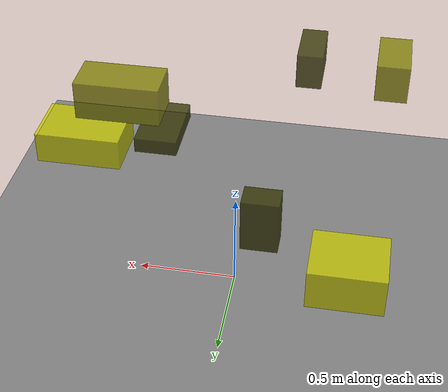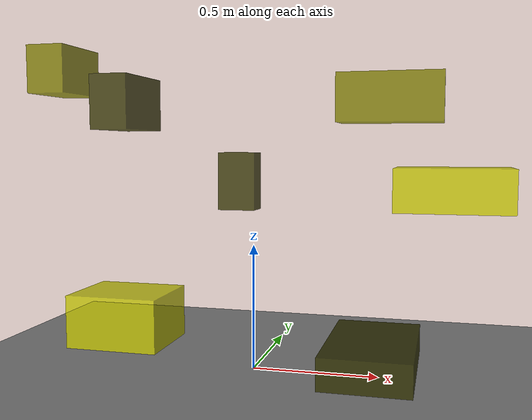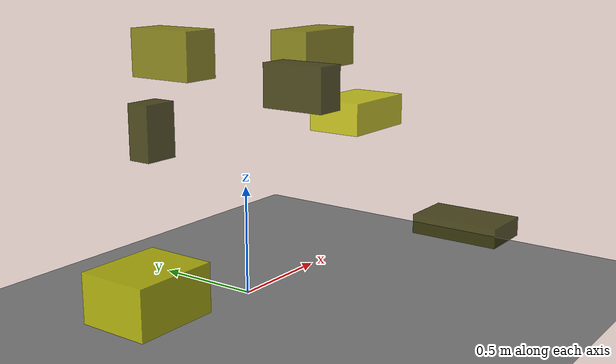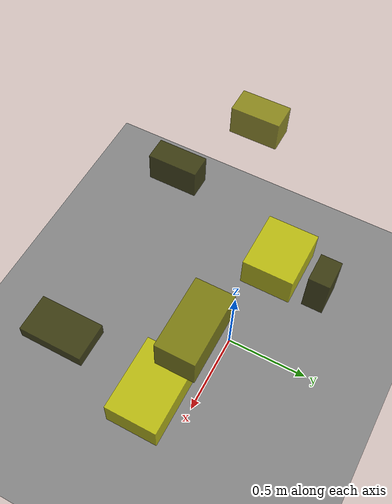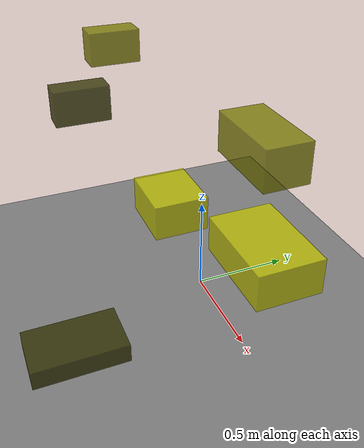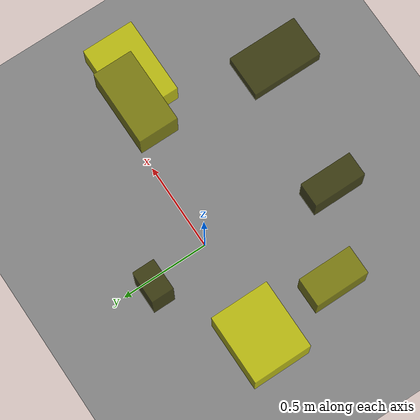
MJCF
<?xml version="1.0"?>
<mujoco model="obstacle_scene">
  <compiler angle="radian" coordinate="local"/>
  <option timestep="0.001" gravity="0 0 -9.81"/>

  <asset>
    <material name="obstacle_mat" rgba="0.8 0.8 0.0 0.8"/>
    <material name="ground_mat" rgba="0.5 0.5 0.5 1"/>
  </asset>

  <worldbody>
    <!-- Ground plane -->
    <geom name="ground" type="plane" size="3 3 0.1" material="ground_mat"/>

    <!-- Obstacles -->
    <body name="obstacle_0" pos="-0.176602 0.398312 0.738069">
      <geom name="obs_0" type="box" size="0.084086 0.058824 0.129632" rgba="0.2 0.2 0.0 0.8"/>
    </body>
    <body name="obstacle_1" pos="-0.679108 -0.241821 1.174251">
      <geom name="obs_1" type="box" size="0.072218 0.134467 0.087432" rgba="0.5 0.5 0.0 0.8"/>
    </body>
    <body name="obstacle_2" pos="0.764876 -0.085135 0.739689">
      <geom name="obs_2" type="box" size="0.205427 0.137931 0.077438" rgba="0.8 0.8 0.0 0.8"/>
    </body>
    <body name="obstacle_3" pos="0.554915 -0.806406 0.330975">
      <geom name="obs_3" type="box" size="0.118781 0.199021 0.042699" rgba="0.2 0.2 0.0 0.8"/>
    </body>
    <body name="obstacle_4" pos="0.531863 0.016452 1.074614">
      <geom name="obs_4" type="box" size="0.195693 0.101879 0.091103" rgba="0.5 0.5 0.0 0.8"/>
    </body>
    <body name="obstacle_5" pos="-0.577442 0.046422 0.169980">
      <geom name="obs_5" type="box" size="0.196198 0.166103 0.109977" rgba="0.8 0.8 0.0 0.8"/>
    </body>
    <body name="obstacle_6" pos="-0.288316 -0.520997 1.032409">
      <geom name="obs_6" type="box" size="0.061839 0.134547 0.086539" rgba="0.2 0.2 0.0 0.8"/>
    </body>
  </worldbody>
</mujoco>
